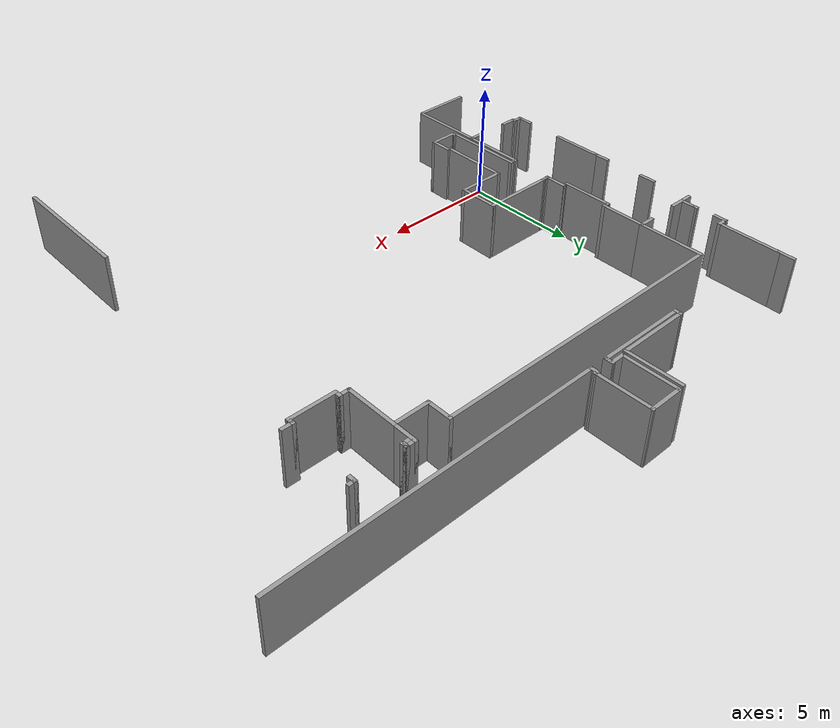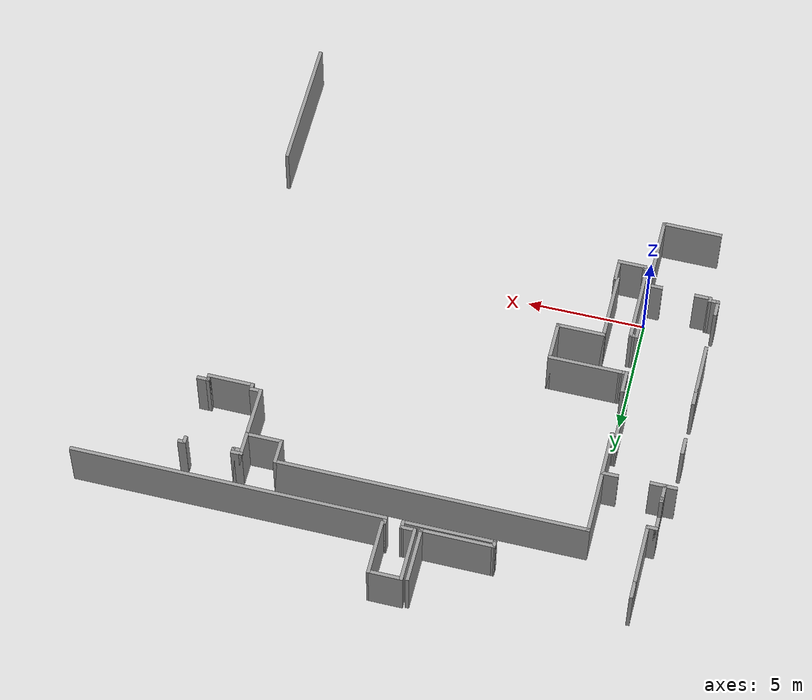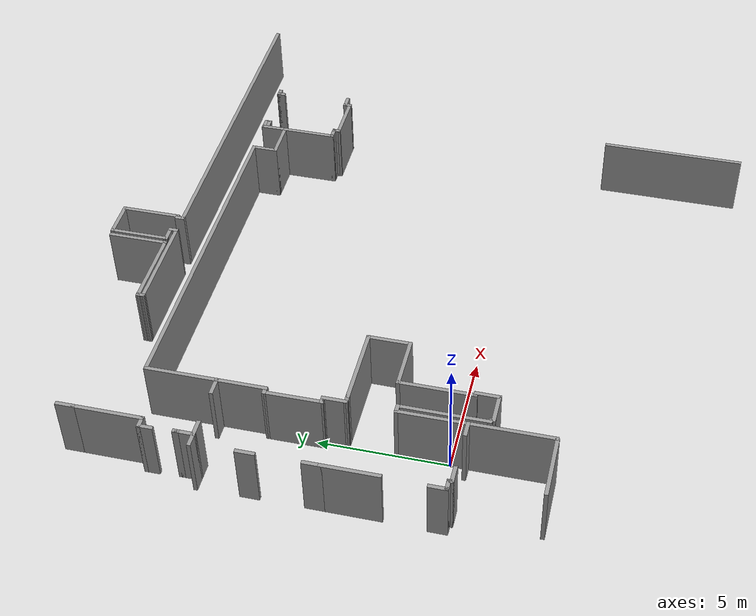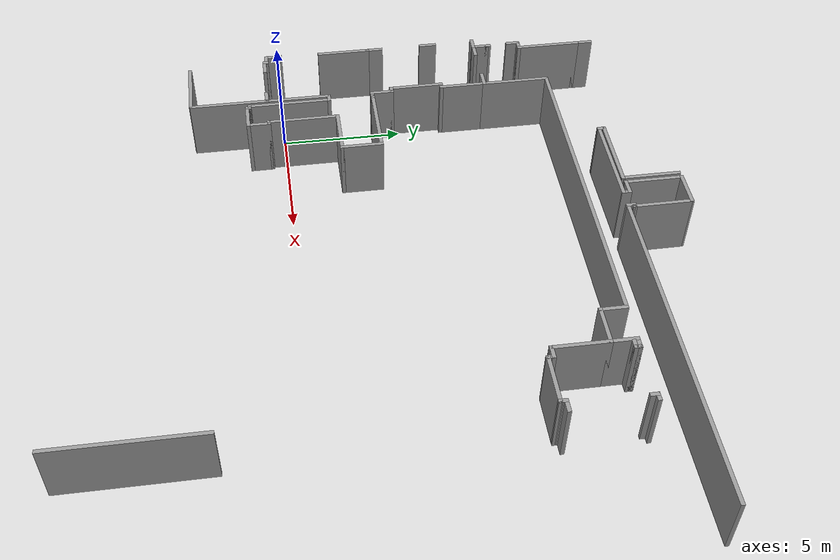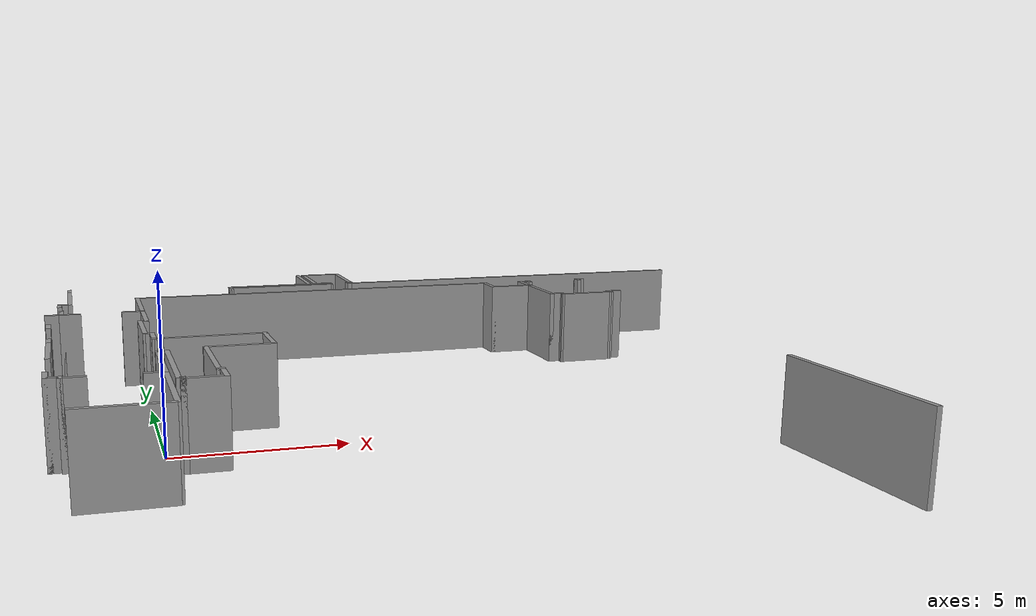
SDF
<sdf version="1.7">
 <model name="NursingHome">
  <pose>-0.88842 0.073115 0 0 -0 0</pose>
  <link name="Wall_297">
   <collision name="Wall_297_Collision">
    <geometry><box><size>0.75 0.15 2.5</size></box></geometry>
    <pose>0 0 1.25 0 -0 0</pose>
   </collision>
   <visual name="Wall_297_Visual">
    <pose>0 0 1.25 0 -0 0</pose>
    <geometry><box><size>0.75 0.15 2.5</size></box></geometry>
    <material>
     <script><uri>file://media/materials/scripts/gazebo.material</uri><name>Gazebo/Grey</name></script>
     <ambient>1 1 1 1</ambient>
    </material>
    <meta><layer>0</layer></meta>
   </visual>
   <pose>-1.32906 13.4884 0 0 -0 1.5708</pose>
  </link>
  <link name="Wall_299">
   <collision name="Wall_299_Collision">
    <geometry><box><size>2.75 0.15 2.5</size></box></geometry>
    <pose>0 0 1.25 0 -0 0</pose>
   </collision>
   <visual name="Wall_299_Visual">
    <pose>0 0 1.25 0 -0 0</pose>
    <geometry><box><size>2.75 0.15 2.5</size></box></geometry>
    <material>
     <script><uri>file://media/materials/scripts/gazebo.material</uri><name>Gazebo/Grey</name></script>
     <ambient>1 1 1 1</ambient>
    </material>
    <meta><layer>0</layer></meta>
   </visual>
   <pose>-1.32906 11.8884 0 0 -0 -1.5708</pose>
  </link>
  <link name="Wall_300">
   <collision name="Wall_300_Collision">
    <geometry><box><size>0.5 0.15 2.5</size></box></geometry>
    <pose>0 0 1.25 0 -0 0</pose>
   </collision>
   <visual name="Wall_300_Visual">
    <pose>0 0 1.25 0 -0 0</pose>
    <geometry><box><size>0.5 0.15 2.5</size></box></geometry>
    <material>
     <script><uri>file://media/materials/scripts/gazebo.material</uri><name>Gazebo/Grey</name></script>
     <ambient>1 1 1 1</ambient>
    </material>
    <meta><layer>0</layer></meta>
   </visual>
   <pose>-1.50406 10.5884 0 0 -0 3.14159</pose>
  </link>
  <link name="Wall_301">
   <collision name="Wall_301_Collision">
    <geometry><box><size>0.6 0.15 2.5</size></box></geometry>
    <pose>0 0 1.25 0 -0 0</pose>
   </collision>
   <visual name="Wall_301_Visual">
    <pose>0 0 1.25 0 -0 0</pose>
    <geometry><box><size>0.6 0.15 2.5</size></box></geometry>
    <material>
     <script><uri>file://media/materials/scripts/gazebo.material</uri><name>Gazebo/Grey</name></script>
     <ambient>1 1 1 1</ambient>
    </material>
    <meta><layer>0</layer></meta>
   </visual>
   <pose>-1.67906 10.3634 0 0 -0 -1.5708</pose>
  </link>
  <link name="Wall_315">
   <collision name="Wall_315_Collision">
    <geometry><box><size>0.6 0.15 2.5</size></box></geometry>
    <pose>0 0 1.25 0 -0 0</pose>
   </collision>
   <visual name="Wall_315_Visual">
    <pose>0 0 1.25 0 -0 0</pose>
    <geometry><box><size>0.6 0.15 2.5</size></box></geometry>
    <material>
     <script><uri>file://media/materials/scripts/gazebo.material</uri><name>Gazebo/Grey</name></script>
     <ambient>1 1 1 1</ambient>
    </material>
    <meta><layer>0</layer></meta>
   </visual>
   <pose>-1.85406 8.58842 0 0 -0 0</pose>
  </link>
  <link name="Wall_317">
   <collision name="Wall_317_Collision">
    <geometry><box><size>0.75 0.15 2.5</size></box></geometry>
    <pose>0 0 1.25 0 -0 0</pose>
   </collision>
   <visual name="Wall_317_Visual">
    <pose>0 0 1.25 0 -0 0</pose>
    <geometry><box><size>0.75 0.15 2.5</size></box></geometry>
    <material>
     <script><uri>file://media/materials/scripts/gazebo.material</uri><name>Gazebo/Grey</name></script>
     <ambient>1 1 1 1</ambient>
    </material>
    <meta><layer>0</layer></meta>
   </visual>
   <pose>-1.62906 8.88842 0 0 -0 -1.5708</pose>
  </link>
  <link name="Wall_319">
   <collision name="Wall_319_Collision">
    <geometry><box><size>0.7 0.15 2.5</size></box></geometry>
    <pose>0 0 1.25 0 -0 0</pose>
   </collision>
   <visual name="Wall_319_Visual">
    <pose>0 0 1.25 0 -0 0</pose>
    <geometry><box><size>0.7 0.15 2.5</size></box></geometry>
    <material>
     <script><uri>file://media/materials/scripts/gazebo.material</uri><name>Gazebo/Grey</name></script>
     <ambient>1 1 1 1</ambient>
    </material>
    <meta><layer>0</layer></meta>
   </visual>
   <pose>-1.35406 8.58842 0 0 -0 0</pose>
  </link>
  <link name="Wall_321">
   <collision name="Wall_321_Collision">
    <geometry><box><size>0.75 0.15 2.5</size></box></geometry>
    <pose>0 0 1.25 0 -0 0</pose>
   </collision>
   <visual name="Wall_321_Visual">
    <pose>0 0 1.25 0 -0 0</pose>
    <geometry><box><size>0.75 0.15 2.5</size></box></geometry>
    <material>
     <script><uri>file://media/materials/scripts/gazebo.material</uri><name>Gazebo/Grey</name></script>
     <ambient>1 1 1 1</ambient>
    </material>
    <meta><layer>0</layer></meta>
   </visual>
   <pose>0.6629 8.60116 0 0 -0 0</pose>
  </link>
  <link name="Wall_323">
   <collision name="Wall_323_Collision">
    <geometry><box><size>2.85 0.15 2.5</size></box></geometry>
    <pose>0 0 1.25 0 -0 0</pose>
   </collision>
   <visual name="Wall_323_Visual">
    <pose>0 0 1.25 0 -0 0</pose>
    <geometry><box><size>2.85 0.15 2.5</size></box></geometry>
    <material>
     <script><uri>file://media/materials/scripts/gazebo.material</uri><name>Gazebo/Grey</name></script>
     <ambient>1 1 1 1</ambient>
    </material>
    <meta><layer>0</layer></meta>
   </visual>
   <pose>0.9629 9.95116 0 0 -0 1.5708</pose>
  </link>
  <link name="Wall_330">
   <collision name="Wall_330_Collision">
    <geometry><box><size>0.75 0.15 2.5</size></box></geometry>
    <pose>0 0 1.25 0 -0 0</pose>
   </collision>
   <visual name="Wall_330_Visual">
    <pose>0 0 1.25 0 -0 0</pose>
    <geometry><box><size>0.75 0.15 2.5</size></box></geometry>
    <material>
     <script><uri>file://media/materials/scripts/gazebo.material</uri><name>Gazebo/Grey</name></script>
     <ambient>1 1 1 1</ambient>
    </material>
    <meta><layer>0</layer></meta>
   </visual>
   <pose>-2.01296 6.59025 0 0 -0 1.5708</pose>
  </link>
  <link name="Wall_337">
   <collision name="Wall_337_Collision">
    <geometry><box><size>0.75 0.15 2.5</size></box></geometry>
    <pose>0 0 1.25 0 -0 0</pose>
   </collision>
   <visual name="Wall_337_Visual">
    <pose>0 0 1.25 0 -0 0</pose>
    <geometry><box><size>0.75 0.15 2.5</size></box></geometry>
    <material>
     <script><uri>file://media/materials/scripts/gazebo.material</uri><name>Gazebo/Grey</name></script>
     <ambient>1 1 1 1</ambient>
    </material>
    <meta><layer>0</layer></meta>
   </visual>
   <pose>-1.99255 4.19834 0 0 -0 1.5708</pose>
  </link>
  <link name="Wall_348">
   <collision name="Wall_348_Collision">
    <geometry><box><size>2 0.15 2.5</size></box></geometry>
    <pose>0 0 1.25 0 -0 0</pose>
   </collision>
   <visual name="Wall_348_Visual">
    <pose>0 0 1.25 0 -0 0</pose>
    <geometry><box><size>2 0.15 2.5</size></box></geometry>
    <material>
     <script><uri>file://media/materials/scripts/gazebo.material</uri><name>Gazebo/Grey</name></script>
     <ambient>1 1 1 1</ambient>
    </material>
    <meta><layer>0</layer></meta>
   </visual>
   <pose>0.9629 7.67616 0 0 -0 -1.5708</pose>
  </link>
  <link name="Wall_349">
   <collision name="Wall_349_Collision">
    <geometry><box><size>0.35 0.15 2.5</size></box></geometry>
    <pose>0 0 1.25 0 -0 0</pose>
   </collision>
   <visual name="Wall_349_Visual">
    <pose>0 0 1.25 0 -0 0</pose>
    <geometry><box><size>0.35 0.15 2.5</size></box></geometry>
    <material>
     <script><uri>file://media/materials/scripts/gazebo.material</uri><name>Gazebo/Grey</name></script>
     <ambient>1 1 1 1</ambient>
    </material>
    <meta><layer>0</layer></meta>
   </visual>
   <pose>0.8629 6.75116 0 0 -0 3.14159</pose>
  </link>
  <link name="Wall_352">
   <collision name="Wall_352_Collision">
    <geometry><box><size>1 0.15 2.5</size></box></geometry>
    <pose>0 0 1.25 0 -0 0</pose>
   </collision>
   <visual name="Wall_352_Visual">
    <pose>0 0 1.25 0 -0 0</pose>
    <geometry><box><size>1 0.15 2.5</size></box></geometry>
    <material>
     <script><uri>file://media/materials/scripts/gazebo.material</uri><name>Gazebo/Grey</name></script>
     <ambient>1 1 1 1</ambient>
    </material>
    <meta><layer>0</layer></meta>
   </visual>
   <pose>0.976851 4.19183 0 0 -0 -1.5708</pose>
  </link>
  <link name="Wall_354">
   <collision name="Wall_354_Collision">
    <geometry><box><size>0.35 0.15 2.5</size></box></geometry>
    <pose>0 0 1.25 0 -0 0</pose>
   </collision>
   <visual name="Wall_354_Visual">
    <pose>0 0 1.25 0 -0 0</pose>
    <geometry><box><size>0.35 0.15 2.5</size></box></geometry>
    <material>
     <script><uri>file://media/materials/scripts/gazebo.material</uri><name>Gazebo/Grey</name></script>
     <ambient>1 1 1 1</ambient>
    </material>
    <meta><layer>0</layer></meta>
   </visual>
   <pose>0.876851 4.61683 0 0 -0 3.14159</pose>
  </link>
  <link name="Wall_355">
   <collision name="Wall_355_Collision">
    <geometry><box><size>2.28438 0.15 2.5</size></box></geometry>
    <pose>0 0 1.25 0 -0 0</pose>
   </collision>
   <visual name="Wall_355_Visual">
    <pose>0 0 1.25 0 -0 0</pose>
    <geometry><box><size>2.28438 0.15 2.5</size></box></geometry>
    <material>
     <script><uri>file://media/materials/scripts/gazebo.material</uri><name>Gazebo/Grey</name></script>
     <ambient>1 1 1 1</ambient>
    </material>
    <meta><layer>0</layer></meta>
   </visual>
   <pose>0.769875 5.684 0 0 -0 1.57733</pose>
  </link>
  <link name="Wall_357">
   <collision name="Wall_357_Collision">
    <geometry><box><size>2.25 0.15 2.5</size></box></geometry>
    <pose>0 0 1.25 0 -0 0</pose>
   </collision>
   <visual name="Wall_357_Visual">
    <pose>0 0 1.25 0 -0 0</pose>
    <geometry><box><size>2.25 0.15 2.5</size></box></geometry>
    <material>
     <script><uri>file://media/materials/scripts/gazebo.material</uri><name>Gazebo/Grey</name></script>
     <ambient>1 1 1 1</ambient>
    </material>
    <meta><layer>0</layer></meta>
   </visual>
   <pose>-1.99255 2.84834 0 0 -0 -1.5708</pose>
  </link>
  <link name="Wall_398">
   <collision name="Wall_398_Collision">
    <geometry><box><size>3.15 0.15 2.5</size></box></geometry>
    <pose>0 0 1.25 0 -0 0</pose>
   </collision>
   <visual name="Wall_398_Visual">
    <pose>0 0 1.25 0 -0 0</pose>
    <geometry><box><size>3.15 0.15 2.5</size></box></geometry>
    <material>
     <script><uri>file://media/materials/scripts/gazebo.material</uri><name>Gazebo/Grey</name></script>
     <ambient>1 1 1 1</ambient>
    </material>
    <meta><layer>0</layer></meta>
   </visual>
   <pose>2.73348 3.77104 0 0 -0 0</pose>
  </link>
  <link name="Wall_400">
   <collision name="Wall_400_Collision">
    <geometry><box><size>1.75 0.15 2.5</size></box></geometry>
    <pose>0 0 1.25 0 -0 0</pose>
   </collision>
   <visual name="Wall_400_Visual">
    <pose>0 0 1.25 0 -0 0</pose>
    <geometry><box><size>1.75 0.15 2.5</size></box></geometry>
    <material>
     <script><uri>file://media/materials/scripts/gazebo.material</uri><name>Gazebo/Grey</name></script>
     <ambient>1 1 1 1</ambient>
    </material>
    <meta><layer>0</layer></meta>
   </visual>
   <pose>4.23348 2.97104 0 0 -0 -1.5708</pose>
  </link>
  <link name="Wall_401">
   <collision name="Wall_401_Collision">
    <geometry><box><size>2.1 0.15 2.5</size></box></geometry>
    <pose>0 0 1.25 0 -0 0</pose>
   </collision>
   <visual name="Wall_401_Visual">
    <pose>0 0 1.25 0 -0 0</pose>
    <geometry><box><size>2.1 0.15 2.5</size></box></geometry>
    <material>
     <script><uri>file://media/materials/scripts/gazebo.material</uri><name>Gazebo/Grey</name></script>
     <ambient>1 1 1 1</ambient>
    </material>
    <meta><layer>0</layer></meta>
   </visual>
   <pose>3.25848 2.17104 0 0 -0 3.14159</pose>
  </link>
  <link name="Wall_403">
   <collision name="Wall_403_Collision">
    <geometry><box><size>3 0.15 2.5</size></box></geometry>
    <pose>0 0 1.25 0 -0 0</pose>
   </collision>
   <visual name="Wall_403_Visual">
    <pose>0 0 1.25 0 -0 0</pose>
    <geometry><box><size>3 0.15 2.5</size></box></geometry>
    <material>
     <script><uri>file://media/materials/scripts/gazebo.material</uri><name>Gazebo/Grey</name></script>
     <ambient>1 1 1 1</ambient>
    </material>
    <meta><layer>0</layer></meta>
   </visual>
   <pose>2.28348 0.746044 0 0 -0 -1.5708</pose>
  </link>
  <link name="Wall_404">
   <collision name="Wall_404_Collision">
    <geometry><box><size>0.25 0.15 2.5</size></box></geometry>
    <pose>0 0 1.25 0 -0 0</pose>
   </collision>
   <visual name="Wall_404_Visual">
    <pose>0 0 1.25 0 -0 0</pose>
    <geometry><box><size>0.25 0.15 2.5</size></box></geometry>
    <material>
     <script><uri>file://media/materials/scripts/gazebo.material</uri><name>Gazebo/Grey</name></script>
     <ambient>1 1 1 1</ambient>
    </material>
    <meta><layer>0</layer></meta>
   </visual>
   <pose>2.33348 -0.678956 0 0 -0 0</pose>
  </link>
  <link name="Wall_405">
   <collision name="Wall_405_Collision">
    <geometry><box><size>1 0.15 2.5</size></box></geometry>
    <pose>0 0 1.25 0 -0 0</pose>
   </collision>
   <visual name="Wall_405_Visual">
    <pose>0 0 1.25 0 -0 0</pose>
    <geometry><box><size>1 0.15 2.5</size></box></geometry>
    <material>
     <script><uri>file://media/materials/scripts/gazebo.material</uri><name>Gazebo/Grey</name></script>
     <ambient>1 1 1 1</ambient>
    </material>
    <meta><layer>0</layer></meta>
   </visual>
   <pose>2.38348 -1.10396 0 0 -0 -1.5708</pose>
  </link>
  <link name="Wall_406">
   <collision name="Wall_406_Collision">
    <geometry><box><size>1.25 0.15 2.5</size></box></geometry>
    <pose>0 0 1.25 0 -0 0</pose>
   </collision>
   <visual name="Wall_406_Visual">
    <pose>0 0 1.25 0 -0 0</pose>
    <geometry><box><size>1.25 0.15 2.5</size></box></geometry>
    <material>
     <script><uri>file://media/materials/scripts/gazebo.material</uri><name>Gazebo/Grey</name></script>
     <ambient>1 1 1 1</ambient>
    </material>
    <meta><layer>0</layer></meta>
   </visual>
   <pose>1.83348 -1.52896 0 0 -0 3.14159</pose>
  </link>
  <link name="Wall_407">
   <collision name="Wall_407_Collision">
    <geometry><box><size>0.25 0.15 2.5</size></box></geometry>
    <pose>0 0 1.25 0 -0 0</pose>
   </collision>
   <visual name="Wall_407_Visual">
    <pose>0 0 1.25 0 -0 0</pose>
    <geometry><box><size>0.25 0.15 2.5</size></box></geometry>
    <material>
     <script><uri>file://media/materials/scripts/gazebo.material</uri><name>Gazebo/Grey</name></script>
     <ambient>1 1 1 1</ambient>
    </material>
    <meta><layer>0</layer></meta>
   </visual>
   <pose>1.28348 -1.47896 0 0 -0 1.5708</pose>
  </link>
  <link name="Wall_408">
   <collision name="Wall_408_Collision">
    <geometry><box><size>0.25 0.15 2.5</size></box></geometry>
    <pose>0 0 1.25 0 -0 0</pose>
   </collision>
   <visual name="Wall_408_Visual">
    <pose>0 0 1.25 0 -0 0</pose>
    <geometry><box><size>0.25 0.15 2.5</size></box></geometry>
    <material>
     <script><uri>file://media/materials/scripts/gazebo.material</uri><name>Gazebo/Grey</name></script>
     <ambient>1 1 1 1</ambient>
    </material>
    <meta><layer>0</layer></meta>
   </visual>
   <pose>1.23348 -1.42896 0 0 -0 3.14159</pose>
  </link>
  <link name="Wall_409">
   <collision name="Wall_409_Collision">
    <geometry><box><size>3.5 0.15 2.5</size></box></geometry>
    <pose>0 0 1.25 0 -0 0</pose>
   </collision>
   <visual name="Wall_409_Visual">
    <pose>0 0 1.25 0 -0 0</pose>
    <geometry><box><size>3.5 0.15 2.5</size></box></geometry>
    <material>
     <script><uri>file://media/materials/scripts/gazebo.material</uri><name>Gazebo/Grey</name></script>
     <ambient>1 1 1 1</ambient>
    </material>
    <meta><layer>0</layer></meta>
   </visual>
   <pose>1.18348 0.246044 0 0 -0 1.5708</pose>
  </link>
  <link name="Wall_412">
   <collision name="Wall_412_Collision">
    <geometry><box><size>0.4 0.15 2.5</size></box></geometry>
    <pose>0 0 1.25 0 -0 0</pose>
   </collision>
   <visual name="Wall_412_Visual">
    <pose>0 0 1.25 0 -0 0</pose>
    <geometry><box><size>0.4 0.15 2.5</size></box></geometry>
    <material>
     <script><uri>file://media/materials/scripts/gazebo.material</uri><name>Gazebo/Grey</name></script>
     <ambient>1 1 1 1</ambient>
    </material>
    <meta><layer>0</layer></meta>
   </visual>
   <pose>1.05848 1.92104 0 0 -0 3.14159</pose>
  </link>
  <link name="Wall_416">
   <collision name="Wall_416_Collision">
    <geometry><box><size>2.75 0.15 2.5</size></box></geometry>
    <pose>0 0 1.25 0 -0 0</pose>
   </collision>
   <visual name="Wall_416_Visual">
    <pose>0 0 1.25 0 -0 0</pose>
    <geometry><box><size>2.75 0.15 2.5</size></box></geometry>
    <material>
     <script><uri>file://media/materials/scripts/gazebo.material</uri><name>Gazebo/Grey</name></script>
     <ambient>1 1 1 1</ambient>
    </material>
    <meta><layer>0</layer></meta>
   </visual>
   <pose>0.933484 0.621044 0 0 -0 -1.5708</pose>
  </link>
  <link name="Wall_418">
   <collision name="Wall_418_Collision">
    <geometry><box><size>0.75 0.15 2.5</size></box></geometry>
    <pose>0 0 1.25 0 -0 0</pose>
   </collision>
   <visual name="Wall_418_Visual">
    <pose>0 0 1.25 0 -0 0</pose>
    <geometry><box><size>0.75 0.15 2.5</size></box></geometry>
    <material>
     <script><uri>file://media/materials/scripts/gazebo.material</uri><name>Gazebo/Grey</name></script>
     <ambient>1 1 1 1</ambient>
    </material>
    <meta><layer>0</layer></meta>
   </visual>
   <pose>-2.04158 -0.246219 0 0 -0 -1.5708</pose>
  </link>
  <link name="Wall_419">
   <collision name="Wall_419_Collision">
    <geometry><box><size>0.5 0.15 2.5</size></box></geometry>
    <pose>0 0 1.25 0 -0 0</pose>
   </collision>
   <visual name="Wall_419_Visual">
    <pose>0 0 1.25 0 -0 0</pose>
    <geometry><box><size>0.5 0.15 2.5</size></box></geometry>
    <material>
     <script><uri>file://media/materials/scripts/gazebo.material</uri><name>Gazebo/Grey</name></script>
     <ambient>1 1 1 1</ambient>
    </material>
    <meta><layer>0</layer></meta>
   </visual>
   <pose>-1.86658 -0.546219 0 0 -0 0</pose>
  </link>
  <link name="Wall_420">
   <collision name="Wall_420_Collision">
    <geometry><box><size>0.25 0.15 2.5</size></box></geometry>
    <pose>0 0 1.25 0 -0 0</pose>
   </collision>
   <visual name="Wall_420_Visual">
    <pose>0 0 1.25 0 -0 0</pose>
    <geometry><box><size>0.25 0.15 2.5</size></box></geometry>
    <material>
     <script><uri>file://media/materials/scripts/gazebo.material</uri><name>Gazebo/Grey</name></script>
     <ambient>1 1 1 1</ambient>
    </material>
    <meta><layer>0</layer></meta>
   </visual>
   <pose>-1.69158 -0.596219 0 0 -0 -1.5708</pose>
  </link>
  <link name="Wall_421">
   <collision name="Wall_421_Collision">
    <geometry><box><size>0.75 0.15 2.5</size></box></geometry>
    <pose>0 0 1.25 0 -0 0</pose>
   </collision>
   <visual name="Wall_421_Visual">
    <pose>0 0 1.25 0 -0 0</pose>
    <geometry><box><size>0.75 0.15 2.5</size></box></geometry>
    <material>
     <script><uri>file://media/materials/scripts/gazebo.material</uri><name>Gazebo/Grey</name></script>
     <ambient>1 1 1 1</ambient>
    </material>
    <meta><layer>0</layer></meta>
   </visual>
   <pose>-1.39158 -0.646219 0 0 -0 0</pose>
  </link>
  <link name="Wall_424">
   <collision name="Wall_424_Collision">
    <geometry><box><size>0.65 0.15 2.5</size></box></geometry>
    <pose>0 0 1.25 0 -0 0</pose>
   </collision>
   <visual name="Wall_424_Visual">
    <pose>0 0 1.25 0 -0 0</pose>
    <geometry><box><size>0.65 0.15 2.5</size></box></geometry>
    <material>
     <script><uri>file://media/materials/scripts/gazebo.material</uri><name>Gazebo/Grey</name></script>
     <ambient>1 1 1 1</ambient>
    </material>
    <meta><layer>0</layer></meta>
   </visual>
   <pose>0.683484 -0.678956 0 0 -0 3.14159</pose>
  </link>
  <link name="Wall_430">
   <collision name="Wall_430_Collision">
    <geometry><box><size>2.5 0.15 2.5</size></box></geometry>
    <pose>0 0 1.25 0 -0 0</pose>
   </collision>
   <visual name="Wall_430_Visual">
    <pose>0 0 1.25 0 -0 0</pose>
    <geometry><box><size>2.5 0.15 2.5</size></box></geometry>
    <material>
     <script><uri>file://media/materials/scripts/gazebo.material</uri><name>Gazebo/Grey</name></script>
     <ambient>1 1 1 1</ambient>
    </material>
    <meta><layer>0</layer></meta>
   </visual>
   <pose>-0.315642 -3.85915 0 0 -0 3.14159</pose>
  </link>
  <link name="Wall_434">
   <collision name="Wall_434_Collision">
    <geometry><box><size>3.3 0.15 2.5</size></box></geometry>
    <pose>0 0 1.25 0 -0 0</pose>
   </collision>
   <visual name="Wall_434_Visual">
    <pose>0 0 1.25 0 -0 0</pose>
    <geometry><box><size>3.3 0.15 2.5</size></box></geometry>
    <material>
     <script><uri>file://media/materials/scripts/gazebo.material</uri><name>Gazebo/Grey</name></script>
     <ambient>1 1 1 1</ambient>
    </material>
    <meta><layer>0</layer></meta>
   </visual>
   <pose>0.933484 -2.25396 0 0 -0 -1.5708</pose>
  </link>
  <link name="Wall_436">
   <collision name="Wall_436_Collision">
    <geometry><box><size>0.406668 0.15 2.5</size></box></geometry>
    <pose>0 0 1.25 0 -0 0</pose>
   </collision>
   <visual name="Wall_436_Visual">
    <pose>0 0 1.25 0 -0 0</pose>
    <geometry><box><size>0.406668 0.15 2.5</size></box></geometry>
    <material>
     <script><uri>file://media/materials/scripts/gazebo.material</uri><name>Gazebo/Grey</name></script>
     <ambient>1 1 1 1</ambient>
    </material>
    <meta><layer>0</layer></meta>
   </visual>
   <pose>1.10517 3.76894 0 0 -0 0.01642</pose>
  </link>
  <link name="Wall_439">
   <collision name="Wall_439_Collision">
    <geometry><box><size>13.2 0.15 2.5</size></box></geometry>
    <pose>0 0 1.25 0 -0 0</pose>
   </collision>
   <visual name="Wall_439_Visual">
    <pose>0 0 1.25 0 -0 0</pose>
    <geometry><box><size>13.2 0.15 2.5</size></box></geometry>
    <material>
     <script><uri>file://media/materials/scripts/gazebo.material</uri><name>Gazebo/Grey</name></script>
     <ambient>1 1 1 1</ambient>
    </material>
    <meta><layer>0</layer></meta>
   </visual>
   <pose>7.4879 11.3012 0 0 -0 0</pose>
  </link>
  <link name="Wall_441">
   <collision name="Wall_441_Collision">
    <geometry><box><size>1.1 0.15 2.5</size></box></geometry>
    <pose>0 0 1.25 0 -0 0</pose>
   </collision>
   <visual name="Wall_441_Visual">
    <pose>0 0 1.25 0 -0 0</pose>
    <geometry><box><size>1.1 0.15 2.5</size></box></geometry>
    <material>
     <script><uri>file://media/materials/scripts/gazebo.material</uri><name>Gazebo/Grey</name></script>
     <ambient>1 1 1 1</ambient>
    </material>
    <meta><layer>0</layer></meta>
   </visual>
   <pose>14.0129 10.8262 0 0 -0 -1.5708</pose>
  </link>
  <link name="Wall_444">
   <collision name="Wall_444_Collision">
    <geometry><box><size>1.6 0.15 2.5</size></box></geometry>
    <pose>0 0 1.25 0 -0 0</pose>
   </collision>
   <visual name="Wall_444_Visual">
    <pose>0 0 1.25 0 -0 0</pose>
    <geometry><box><size>1.6 0.15 2.5</size></box></geometry>
    <material>
     <script><uri>file://media/materials/scripts/gazebo.material</uri><name>Gazebo/Grey</name></script>
     <ambient>1 1 1 1</ambient>
    </material>
    <meta><layer>0</layer></meta>
   </visual>
   <pose>14.7379 10.3512 0 0 -0 0</pose>
  </link>
  <link name="Wall_446">
   <collision name="Wall_446_Collision">
    <geometry><box><size>1.1 0.15 2.5</size></box></geometry>
    <pose>0 0 1.25 0 -0 0</pose>
   </collision>
   <visual name="Wall_446_Visual">
    <pose>0 0 1.25 0 -0 0</pose>
    <geometry><box><size>1.1 0.15 2.5</size></box></geometry>
    <material>
     <script><uri>file://media/materials/scripts/gazebo.material</uri><name>Gazebo/Grey</name></script>
     <ambient>1 1 1 1</ambient>
    </material>
    <meta><layer>0</layer></meta>
   </visual>
   <pose>15.4629 10.8262 0 0 -0 1.5708</pose>
  </link>
  <link name="Wall_448">
   <collision name="Wall_448_Collision">
    <geometry><box><size>0.5 0.15 2.5</size></box></geometry>
    <pose>0 0 1.25 0 -0 0</pose>
   </collision>
   <visual name="Wall_448_Visual">
    <pose>0 0 1.25 0 -0 0</pose>
    <geometry><box><size>0.5 0.15 2.5</size></box></geometry>
    <material>
     <script><uri>file://media/materials/scripts/gazebo.material</uri><name>Gazebo/Grey</name></script>
     <ambient>1 1 1 1</ambient>
    </material>
    <meta><layer>0</layer></meta>
   </visual>
   <pose>15.6379 11.3012 0 0 -0 0</pose>
  </link>
  <link name="Wall_449">
   <collision name="Wall_449_Collision">
    <geometry><box><size>0.3 0.15 2.5</size></box></geometry>
    <pose>0 0 1.25 0 -0 0</pose>
   </collision>
   <visual name="Wall_449_Visual">
    <pose>0 0 1.25 0 -0 0</pose>
    <geometry><box><size>0.3 0.15 2.5</size></box></geometry>
    <material>
     <script><uri>file://media/materials/scripts/gazebo.material</uri><name>Gazebo/Grey</name></script>
     <ambient>1 1 1 1</ambient>
    </material>
    <meta><layer>0</layer></meta>
   </visual>
   <pose>15.8129 11.2262 0 0 -0 -1.5708</pose>
  </link>
  <link name="Wall_452">
   <collision name="Wall_452_Collision">
    <geometry><box><size>0.4 0.15 2.5</size></box></geometry>
    <pose>0 0 1.25 0 -0 0</pose>
   </collision>
   <visual name="Wall_452_Visual">
    <pose>0 0 1.25 0 -0 0</pose>
    <geometry><box><size>0.4 0.15 2.5</size></box></geometry>
    <material>
     <script><uri>file://media/materials/scripts/gazebo.material</uri><name>Gazebo/Grey</name></script>
     <ambient>1 1 1 1</ambient>
    </material>
    <meta><layer>0</layer></meta>
   </visual>
   <pose>15.6879 11.1512 0 0 -0 3.14159</pose>
  </link>
  <link name="Wall_454">
   <collision name="Wall_454_Collision">
    <geometry><box><size>2.25 0.15 2.5</size></box></geometry>
    <pose>0 0 1.25 0 -0 0</pose>
   </collision>
   <visual name="Wall_454_Visual">
    <pose>0 0 1.25 0 -0 0</pose>
    <geometry><box><size>2.25 0.15 2.5</size></box></geometry>
    <material>
     <script><uri>file://media/materials/scripts/gazebo.material</uri><name>Gazebo/Grey</name></script>
     <ambient>1 1 1 1</ambient>
    </material>
    <meta><layer>0</layer></meta>
   </visual>
   <pose>15.4629 9.30116 0 0 -0 -1.5708</pose>
  </link>
  <link name="Wall_455">
   <collision name="Wall_455_Collision">
    <geometry><box><size>0.55 0.15 2.5</size></box></geometry>
    <pose>0 0 1.25 0 -0 0</pose>
   </collision>
   <visual name="Wall_455_Visual">
    <pose>0 0 1.25 0 -0 0</pose>
    <geometry><box><size>0.55 0.15 2.5</size></box></geometry>
    <material>
     <script><uri>file://media/materials/scripts/gazebo.material</uri><name>Gazebo/Grey</name></script>
     <ambient>1 1 1 1</ambient>
    </material>
    <meta><layer>0</layer></meta>
   </visual>
   <pose>15.6629 8.25116 0 0 -0 0</pose>
  </link>
  <link name="Wall_458">
   <collision name="Wall_458_Collision">
    <geometry><box><size>0.35 0.15 2.5</size></box></geometry>
    <pose>0 0 1.25 0 -0 0</pose>
   </collision>
   <visual name="Wall_458_Visual">
    <pose>0 0 1.25 0 -0 0</pose>
    <geometry><box><size>0.35 0.15 2.5</size></box></geometry>
    <material>
     <script><uri>file://media/materials/scripts/gazebo.material</uri><name>Gazebo/Grey</name></script>
     <ambient>1 1 1 1</ambient>
    </material>
    <meta><layer>0</layer></meta>
   </visual>
   <pose>15.8629 8.15116 0 0 -0 -1.5708</pose>
  </link>
  <link name="Wall_461">
   <collision name="Wall_461_Collision">
    <geometry><box><size>2.00329 0.15 2.5</size></box></geometry>
    <pose>0 0 1.25 0 -0 0</pose>
   </collision>
   <visual name="Wall_461_Visual">
    <pose>0 0 1.25 0 -0 0</pose>
    <geometry><box><size>2.00329 0.15 2.5</size></box></geometry>
    <material>
     <script><uri>file://media/materials/scripts/gazebo.material</uri><name>Gazebo/Grey</name></script>
     <ambient>1 1 1 1</ambient>
    </material>
    <meta><layer>0</layer></meta>
   </visual>
   <pose>16.7895 8.04952 0 0 -0 -0.001774</pose>
  </link>
  <link name="Wall_464">
   <collision name="Wall_464_Collision">
    <geometry><box><size>0.35 0.15 2.5</size></box></geometry>
    <pose>0 0 1.25 0 -0 0</pose>
   </collision>
   <visual name="Wall_464_Visual">
    <pose>0 0 1.25 0 -0 0</pose>
    <geometry><box><size>0.35 0.15 2.5</size></box></geometry>
    <material>
     <script><uri>file://media/materials/scripts/gazebo.material</uri><name>Gazebo/Grey</name></script>
     <ambient>1 1 1 1</ambient>
    </material>
    <meta><layer>0</layer></meta>
   </visual>
   <pose>17.7162 8.14787 0 0 -0 1.5708</pose>
  </link>
  <link name="Wall_468">
   <collision name="Wall_468_Collision">
    <geometry><box><size>0.55 0.15 2.5</size></box></geometry>
    <pose>0 0 1.25 0 -0 0</pose>
   </collision>
   <visual name="Wall_468_Visual">
    <pose>0 0 1.25 0 -0 0</pose>
    <geometry><box><size>0.55 0.15 2.5</size></box></geometry>
    <material>
     <script><uri>file://media/materials/scripts/gazebo.material</uri><name>Gazebo/Grey</name></script>
     <ambient>1 1 1 1</ambient>
    </material>
    <meta><layer>0</layer></meta>
   </visual>
   <pose>17.9162 8.24787 0 0 -0 0</pose>
  </link>
  <link name="Wall_50">
   <collision name="Wall_50_Collision">
    <geometry><box><size>13.3811 0.15 2.5</size></box></geometry>
    <pose>0 0 1.25 0 -0 0</pose>
   </collision>
   <visual name="Wall_50_Visual">
    <pose>0 0 1.25 0 -0 0</pose>
    <geometry><box><size>13.3811 0.15 2.5</size></box></geometry>
    <material>
     <script><uri>file://media/materials/scripts/gazebo.material</uri><name>Gazebo/Grey</name></script>
     <ambient>1 1 1 1</ambient>
    </material>
    <meta><layer>0</layer></meta>
   </visual>
   <pose>15.6232 12.7254 0 0 -0 3.14159</pose>
  </link>
  <link name="Wall_516">
   <collision name="Wall_516_Collision">
    <geometry><box><size>5.75 0.15 2.5</size></box></geometry>
    <pose>0 0 1.25 0 -0 0</pose>
   </collision>
   <visual name="Wall_516_Visual">
    <pose>0 0 1.25 0 -0 0</pose>
    <geometry><box><size>5.75 0.15 2.5</size></box></geometry>
    <material>
     <script><uri>file://media/materials/scripts/gazebo.material</uri><name>Gazebo/Grey</name></script>
     <ambient>1 1 1 1</ambient>
    </material>
    <meta><layer>0</layer></meta>
   </visual>
   <pose>17.4591 -6.21185 0 0 -0 -1.5708</pose>
  </link>
  <link name="Wall_52">
   <collision name="Wall_52_Collision">
    <geometry><box><size>0.4 0.15 2.5</size></box></geometry>
    <pose>0 0 1.25 0 -0 0</pose>
   </collision>
   <visual name="Wall_52_Visual">
    <pose>0 0 1.25 0 -0 0</pose>
    <geometry><box><size>0.4 0.15 2.5</size></box></geometry>
    <material>
     <script><uri>file://media/materials/scripts/gazebo.material</uri><name>Gazebo/Grey</name></script>
     <ambient>1 1 1 1</ambient>
    </material>
    <meta><layer>0</layer></meta>
   </visual>
   <pose>9.00388 12.8504 0 0 -0 1.5708</pose>
  </link>
  <link name="Wall_55">
   <collision name="Wall_55_Collision">
    <geometry><box><size>0.231096 0.15 2.5</size></box></geometry>
    <pose>0 0 1.25 0 -0 0</pose>
   </collision>
   <visual name="Wall_55_Visual">
    <pose>0 0 1.25 0 -0 0</pose>
    <geometry><box><size>0.231096 0.15 2.5</size></box></geometry>
    <material>
     <script><uri>file://media/materials/scripts/gazebo.material</uri><name>Gazebo/Grey</name></script>
     <ambient>1 1 1 1</ambient>
    </material>
    <meta><layer>0</layer></meta>
   </visual>
   <pose>9.04821 12.9754 0 0 -0 0</pose>
  </link>
  <link name="Wall_560">
   <collision name="Wall_560_Collision">
    <geometry><box><size>0.35 0.15 2.5</size></box></geometry>
    <pose>0 0 1.25 0 -0 0</pose>
   </collision>
   <visual name="Wall_560_Visual">
    <pose>0 0 1.25 0 -0 0</pose>
    <geometry><box><size>0.35 0.15 2.5</size></box></geometry>
    <material>
     <script><uri>file://media/materials/scripts/gazebo.material</uri><name>Gazebo/Grey</name></script>
     <ambient>1 1 1 1</ambient>
    </material>
    <meta><layer>0</layer></meta>
   </visual>
   <pose>17.9534 11.3279 0 0 -0 0</pose>
  </link>
  <link name="Wall_562">
   <collision name="Wall_562_Collision">
    <geometry><box><size>0.35 0.15 2.5</size></box></geometry>
    <pose>0 0 1.25 0 -0 0</pose>
   </collision>
   <visual name="Wall_562_Visual">
    <pose>0 0 1.25 0 -0 0</pose>
    <geometry><box><size>0.35 0.15 2.5</size></box></geometry>
    <material>
     <script><uri>file://media/materials/scripts/gazebo.material</uri><name>Gazebo/Grey</name></script>
     <ambient>1 1 1 1</ambient>
    </material>
    <meta><layer>0</layer></meta>
   </visual>
   <pose>17.8534 11.2279 0 0 -0 -1.5708</pose>
  </link>
  <link name="Wall_611">
   <collision name="Wall_611_Collision">
    <geometry><box><size>0.25 0.15 2.5</size></box></geometry>
    <pose>0 0 1.25 0 -0 0</pose>
   </collision>
   <visual name="Wall_611_Visual">
    <pose>0 0 1.25 0 -0 0</pose>
    <geometry><box><size>0.25 0.15 2.5</size></box></geometry>
    <material>
     <script><uri>file://media/materials/scripts/gazebo.material</uri><name>Gazebo/Grey</name></script>
     <ambient>1 1 1 1</ambient>
    </material>
    <meta><layer>0</layer></meta>
   </visual>
   <pose>-1.62906 9.23842 0 0 -0 1.5708</pose>
  </link>
  <link name="Wall_71">
   <collision name="Wall_71_Collision">
    <geometry><box><size>2.41221 0.15 2.5</size></box></geometry>
    <pose>0 0 1.25 0 -0 0</pose>
   </collision>
   <visual name="Wall_71_Visual">
    <pose>0 0 1.25 0 -0 0</pose>
    <geometry><box><size>2.41221 0.15 2.5</size></box></geometry>
    <material>
     <script><uri>file://media/materials/scripts/gazebo.material</uri><name>Gazebo/Grey</name></script>
     <ambient>1 1 1 1</ambient>
    </material>
    <meta><layer>0</layer></meta>
   </visual>
   <pose>9.08597 14.1065 0 0 -0 -1.56834</pose>
  </link>
  <link name="Wall_73">
   <collision name="Wall_73_Collision">
    <geometry><box><size>1.5 0.15 2.5</size></box></geometry>
    <pose>0 0 1.25 0 -0 0</pose>
   </collision>
   <visual name="Wall_73_Visual">
    <pose>0 0 1.25 0 -0 0</pose>
    <geometry><box><size>1.5 0.15 2.5</size></box></geometry>
    <material>
     <script><uri>file://media/materials/scripts/gazebo.material</uri><name>Gazebo/Grey</name></script>
     <ambient>1 1 1 1</ambient>
    </material>
    <meta><layer>0</layer></meta>
   </visual>
   <pose>8.40819 15.2376 0 0 -0 3.14159</pose>
  </link>
  <link name="Wall_74">
   <collision name="Wall_74_Collision">
    <geometry><box><size>2.4 0.15 2.5</size></box></geometry>
    <pose>0 0 1.25 0 -0 0</pose>
   </collision>
   <visual name="Wall_74_Visual">
    <pose>0 0 1.25 0 -0 0</pose>
    <geometry><box><size>2.4 0.15 2.5</size></box></geometry>
    <material>
     <script><uri>file://media/materials/scripts/gazebo.material</uri><name>Gazebo/Grey</name></script>
     <ambient>1 1 1 1</ambient>
    </material>
    <meta><layer>0</layer></meta>
   </visual>
   <pose>7.73319 14.1126 0 0 -0 -1.5708</pose>
  </link>
  <link name="Wall_76">
   <collision name="Wall_76_Collision">
    <geometry><box><size>0.685741 0.15 2.5</size></box></geometry>
    <pose>0 0 1.25 0 -0 0</pose>
   </collision>
   <visual name="Wall_76_Visual">
    <pose>0 0 1.25 0 -0 0</pose>
    <geometry><box><size>0.685741 0.15 2.5</size></box></geometry>
    <material>
     <script><uri>file://media/materials/scripts/gazebo.material</uri><name>Gazebo/Grey</name></script>
     <ambient>1 1 1 1</ambient>
    </material>
    <meta><layer>0</layer></meta>
   </visual>
   <pose>8.00106 12.9895 0 0 -0 0.007057</pose>
  </link>
  <link name="Wall_77">
   <collision name="Wall_77_Collision">
    <geometry><box><size>0.4 0.15 2.5</size></box></geometry>
    <pose>0 0 1.25 0 -0 0</pose>
   </collision>
   <visual name="Wall_77_Visual">
    <pose>0 0 1.25 0 -0 0</pose>
    <geometry><box><size>0.4 0.15 2.5</size></box></geometry>
    <material>
     <script><uri>file://media/materials/scripts/gazebo.material</uri><name>Gazebo/Grey</name></script>
     <ambient>1 1 1 1</ambient>
    </material>
    <meta><layer>0</layer></meta>
   </visual>
   <pose>8.2727 12.8664 0 0 -0 -1.5708</pose>
  </link>
  <link name="Wall_82">
   <collision name="Wall_82_Collision">
    <geometry><box><size>3.93573 0.15 2.5</size></box></geometry>
    <pose>0 0 1.25 0 -0 0</pose>
   </collision>
   <visual name="Wall_82_Visual">
    <pose>0 0 1.25 0 -0 0</pose>
    <geometry><box><size>3.93573 0.15 2.5</size></box></geometry>
    <material>
     <script><uri>file://media/materials/scripts/gazebo.material</uri><name>Gazebo/Grey</name></script>
     <ambient>1 1 1 1</ambient>
    </material>
    <meta><layer>0</layer></meta>
   </visual>
   <pose>6.37606 12.7395 0 0 -0 -3.14059</pose>
  </link>
  <link name="Wall_85">
   <collision name="Wall_85_Collision">
    <geometry><box><size>0.35 0.15 2.5</size></box></geometry>
    <pose>0 0 1.25 0 -0 0</pose>
   </collision>
   <visual name="Wall_85_Visual">
    <pose>0 0 1.25 0 -0 0</pose>
    <geometry><box><size>0.35 0.15 2.5</size></box></geometry>
    <material>
     <script><uri>file://media/materials/scripts/gazebo.material</uri><name>Gazebo/Grey</name></script>
     <ambient>1 1 1 1</ambient>
    </material>
    <meta><layer>0</layer></meta>
   </visual>
   <pose>4.48319 12.8376 0 0 -0 1.5708</pose>
  </link>
  <link name="Wall_93">
   <collision name="Wall_93_Collision">
    <geometry><box><size>3.15209 0.15 2.5</size></box></geometry>
    <pose>0 0 1.25 0 -0 0</pose>
   </collision>
   <visual name="Wall_93_Visual">
    <pose>0 0 1.25 0 -0 0</pose>
    <geometry><box><size>3.15209 0.15 2.5</size></box></geometry>
    <material>
     <script><uri>file://media/materials/scripts/gazebo.material</uri><name>Gazebo/Grey</name></script>
     <ambient>1 1 1 1</ambient>
    </material>
    <meta><layer>0</layer></meta>
   </visual>
   <pose>5.98423 12.9365 0 0 -0 3.14087</pose>
  </link>
  <link name="Wall_95">
   <collision name="Wall_95_Collision">
    <geometry><box><size>2.4 0.15 2.5</size></box></geometry>
    <pose>0 0 1.25 0 -0 0</pose>
   </collision>
   <visual name="Wall_95_Visual">
    <pose>0 0 1.25 0 -0 0</pose>
    <geometry><box><size>2.4 0.15 2.5</size></box></geometry>
    <material>
     <script><uri>file://media/materials/scripts/gazebo.material</uri><name>Gazebo/Grey</name></script>
     <ambient>1 1 1 1</ambient>
    </material>
    <meta><layer>0</layer></meta>
   </visual>
   <pose>7.48528 14.0604 0 0 -0 1.5708</pose>
  </link>
  <static>1</static>
 </model>
</sdf>
